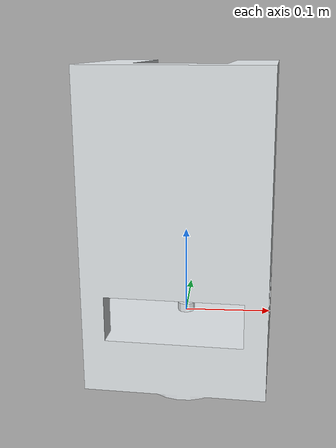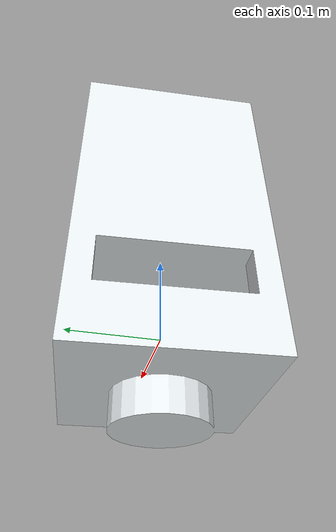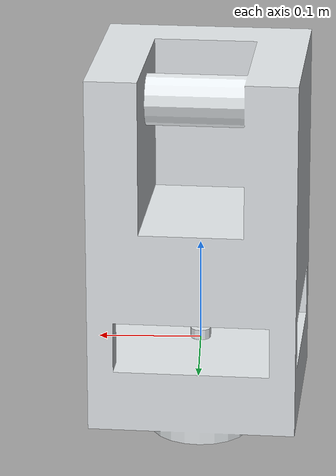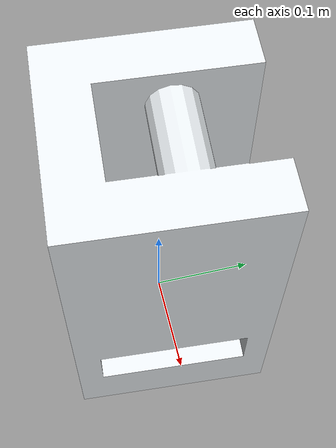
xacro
<?xml version="1.0" encoding="utf-8"?>

<robot name="sentry_yaw"   xmlns:xacro="http://www.ros.org/wiki/xacro">
<link
    name="Yaw_Link">
    <inertial>
      <origin
        xyz="-0.0297189846737023 0.0306277119771997 0.15517250716792"
        rpy="0 0 0" />
      <mass
        value="4.47556835051149" />
      <inertia
        ixx="0.0114045976693997"
        ixy="-1.77303394355185E-05"
        ixz="0.000210898162131933"
        iyy="0.0100198248629364"
        iyz="-1.55714247876524E-06"
        izz="0.0140882406694329" />
    </inertial>
    <visual>
      <origin
        xyz="0 0 0"
        rpy="0 0 0" />
      <geometry>
        <mesh
          filename="package://sentry_kinematics_sim/meshes/Yaw_Link.STL" />
      </geometry>
      <material
        name="">
        <color
          rgba="0.898039215686275 0.917647058823529 0.929411764705882 1" />
      </material>
    </visual>
    <collision>
      <origin
        xyz="0 0 0"
        rpy="0 0 0" />
      <geometry>
        <mesh
          filename="package://sentry_kinematics_sim/meshes/Yaw_Link.STL" />
      </geometry>
    </collision>
  </link>

      <gazebo reference="Yaw_Link">
     <material>Gazebo/LightGrey</material>
     <turnGravityOff>false</turnGravityOff>
 </gazebo>

</robot>
